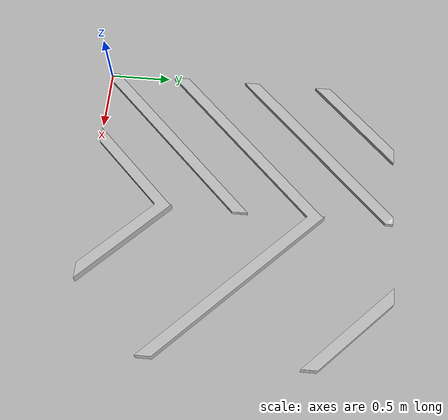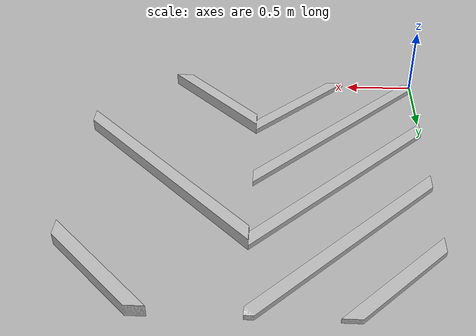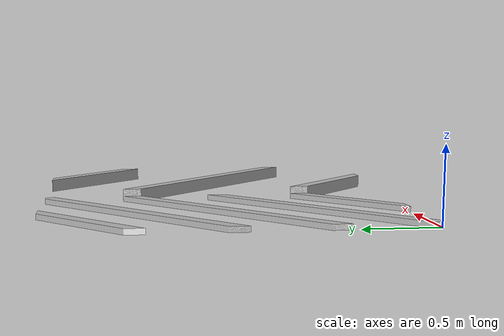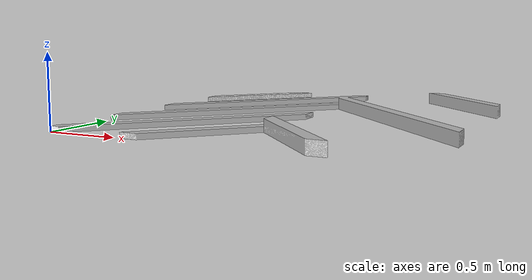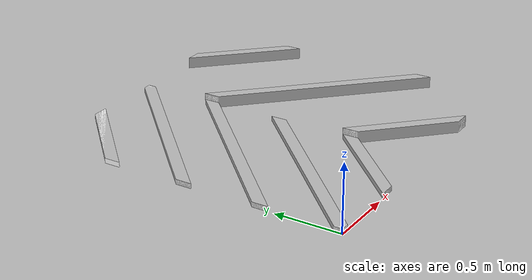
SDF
<?xml version="1.0" ?>
<sdf version="1.5">
  <model name="wood_slats">
    <static>true</static>
    <link name="link">
      <collision name="collision">
        <geometry>
          <mesh>
            <uri>file:///rl/venv/lib/python3.6/site-packages/gym_ignition_models/drc_practice_wood_slats/meshes/wood_slats.dae</uri>
          </mesh>
        </geometry>
        <surface>
          <bounce>
            <restitution_coefficient>0.01</restitution_coefficient>
            <threshold>5.0</threshold>
          </bounce>
          <friction>
            <ode>
              <mu>5</mu>
              <mu2>5</mu2>
            </ode>
          </friction>
          <contact>
            <ode>
              <soft_cfm>0.001</soft_cfm>
              <!--"sponginess", 0.0=hard-->
              <kp>10000.0</kp>
              <kd>1000.0</kd>
              <max_vel>0.01</max_vel>
              <min_depth>0.001</min_depth>
            </ode>
          </contact>
        </surface>
      </collision>
      <visual name="visual">
        <geometry>
          <mesh>
            <uri>file:///rl/venv/lib/python3.6/site-packages/gym_ignition_models/drc_practice_wood_slats/meshes/wood_slats.dae</uri>
          </mesh>
        </geometry>
      </visual>
    </link>
  </model>
</sdf>
